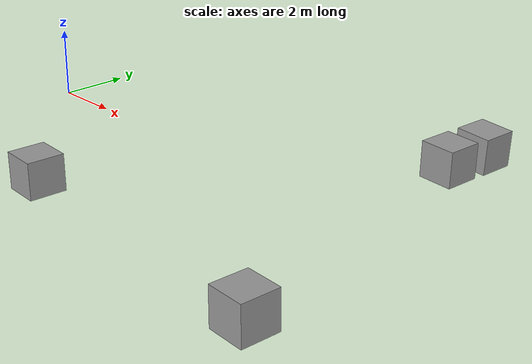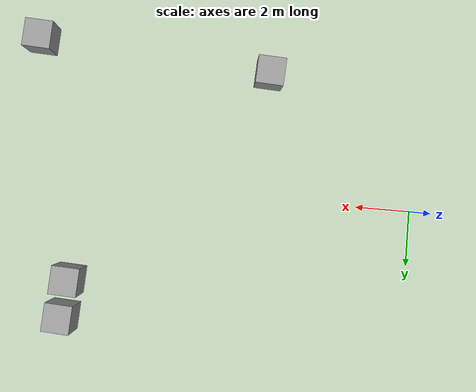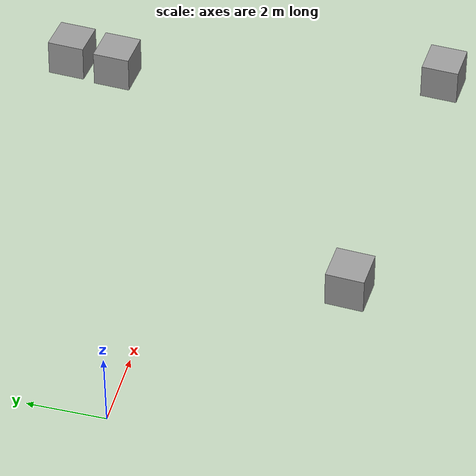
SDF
<sdf version="1.6">
 <world name="default">
  <light name="sun" type="directional">
   <cast_shadows>0</cast_shadows>
   <pose>0 0 10 0 -0 0</pose>
   <diffuse>0.8 0.8 0.8 1</diffuse>
   <specular>0.1 0.1 0.1 1</specular>
   <attenuation>
    <range>1000</range>
    <constant>0.9</constant>
    <linear>0.01</linear>
    <quadratic>0.001</quadratic>
   </attenuation>
   <direction>-0.5 0.5 -1</direction>
  </light>
  <gravity>0 0 -9.8</gravity>
  <magnetic_field>6e-06 2.3e-05 -4.2e-05</magnetic_field>
  <atmosphere type="adiabatic"/>
  <physics name="default_physics" default="0" type="ode">
   <max_step_size>0.001</max_step_size>
   <real_time_factor>1</real_time_factor>
   <real_time_update_rate>1000</real_time_update_rate>
  </physics>
  <scene><ambient>0.4 0.4 0.4 1</ambient><background>0.7 0.7 0.7 1</background><shadows>1</shadows></scene>
  <spherical_coordinates>
   <surface_model>EARTH_WGS84</surface_model>
   <latitude_deg>0</latitude_deg>
   <longitude_deg>0</longitude_deg>
   <elevation>0</elevation>
   <heading_deg>0</heading_deg>
  </spherical_coordinates>
  <model name="unit_box_clone">
   <pose>12.3593 4.69223 0.525678 1.2e-05 0.05276 -0.057334</pose>
   <link name="link">
    <inertial>
     <mass>1</mass>
     <inertia>
      <ixx>0.166667</ixx>
      <ixy>0</ixy>
      <ixz>0</ixz>
      <iyy>0.166667</iyy>
      <iyz>0</iyz>
      <izz>0.166667</izz>
     </inertia>
    </inertial>
    <collision name="collision"><geometry><box><size>1 1 1</size></box></geometry></collision>
    <visual name="visual">
     <geometry><box><size>1 1 1</size></box></geometry>
     <material>
      <script><name>Gazebo/Grey</name><uri>file://media/materials/scripts/gazebo.material</uri></script>
     </material>
    </visual>
   </link>
  </model>
  <model name="unit_box_clone_clone">
   <pose>12.2432 3.3774 0.512884 -1.1e-05 0.026112 -0.055183</pose>
   <link name="link">
    <inertial>
     <mass>1</mass>
     <inertia>
      <ixx>0.166667</ixx>
      <ixy>0</ixy>
      <ixz>0</ixz>
      <iyy>0.166667</iyy>
      <iyz>0</iyz>
      <izz>0.166667</izz>
     </inertia>
    </inertial>
    <collision name="collision"><geometry><box><size>1 1 1</size></box></geometry></collision>
    <visual name="visual">
     <geometry><box><size>1 1 1</size></box></geometry>
     <material>
      <script><name>Gazebo/Grey</name><uri>file://media/materials/scripts/gazebo.material</uri></script>
     </material>
    </visual>
   </link>
  </model>
  <model name="unit_box_clone_clone_0">
   <pose>5.56498 -4.63531 0.500001 -2e-06 -3e-06 -0.05862</pose>
   <link name="link">
    <inertial>
     <mass>1</mass>
     <inertia>
      <ixx>0.166667</ixx>
      <ixy>0</ixy>
      <ixz>0</ixz>
      <iyy>0.166667</iyy>
      <iyz>0</iyz>
      <izz>0.166667</izz>
     </inertia>
    </inertial>
    <collision name="collision"><geometry><box><size>1 1 1</size></box></geometry></collision>
    <visual name="visual">
     <geometry><box><size>1 1 1</size></box></geometry>
     <material>
      <script><name>Gazebo/Grey</name><uri>file://media/materials/scripts/gazebo.material</uri></script>
     </material>
    </visual>
   </link>
  </model>
  <model name="unit_box_clone_clone_1">
   <pose>13.9702 -5.30448 0.499997 1e-06 -3e-06 -0.058568</pose>
   <link name="link">
    <inertial>
     <mass>1</mass>
     <inertia>
      <ixx>0.166667</ixx>
      <ixy>0</ixy>
      <ixz>0</ixz>
      <iyy>0.166667</iyy>
      <iyz>0</iyz>
      <izz>0.166667</izz>
     </inertia>
    </inertial>
    <collision name="collision"><geometry><box><size>1 1 1</size></box></geometry></collision>
    <visual name="visual">
     <geometry><box><size>1 1 1</size></box></geometry>
     <material>
      <script><name>Gazebo/Grey</name><uri>file://media/materials/scripts/gazebo.material</uri></script>
     </material>
    </visual>
   </link>
  </model>
 </world>
</sdf>
